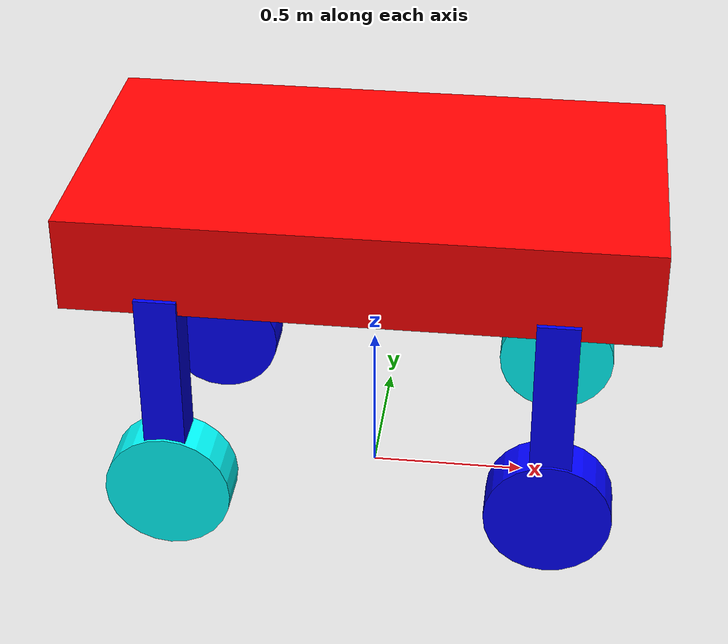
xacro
<?xml version="1.0"?>
<robot xmlns:xacro="http://www.ros.org/wiki/xacro"  name="robot">

<!--xacro:include filename="inertial_file.xacro" /-->

<xacro:property name ="chassis_length" value="1.8"/>
<xacro:property name ="chassis_width" value="1"/>
<xacro:property name ="chassis_height" value="0.3"/>
<xacro:property name ="chassis_mass" value="200"/>

<xacro:property name="wheel_radius" value="0.3" />
<xacro:property name="wheel_thickness" value="0.1" />
<xacro:property name="wheel_mass" value="3" />

<xacro:property name="wheel_offset_x" value="1.0"/>
<xacro:property name="wheel_offset_y" value="0.5"/>
<xacro:property name="wheel_offset_z" value="0.01"/>

<xacro:property name="leg_length" value="0.13" />
<xacro:property name="leg_width" value="0.13"/>
<xacro:property name="leg_height" value="0.8"/>
<xacro:property name="leg_mass" value="10"/>

<xacro:property name="leg_offset_x" value="1.0"/>
<xacro:property name="leg_offset_y" value="0.5"/>
<xacro:property name="leg_offset_z" value="0.1"/>

<material name="white">
    <color rgba="1 1 1 1"/>
</material>

<material name="yellow">
    <color rgba="0 1 1 1"/>
</material>

<material name="blue">
    <color rgba="0 0 1 1"/>
</material>

<material name="red">
    <color rgba="1 0 0 1"/>
</material>

<!--World-->

<link name="base_footprint"/>

<!-- Base Link-->

<joint name="base_joint" type="fixed">
    <origin xyz="0 0 1.0" rpy="0 0 0"/>
    <parent link="base_footprint"/>
    <child link="base_link"/>
</joint>

<!-- Base properties -->
<link name="base_link">
    <visual>
        <origin xyz="0 0 0" rpy="0 0 0"/>
        <geometry>
            <box size="${chassis_length} ${chassis_width} ${chassis_height}" />
        </geometry>
        <material name="red"/>
    </visual>
    <collision>
        <origin xyz="0 0 0" rpy="0 0 0"/>
        <geometry>
            <box size="${chassis_length} ${chassis_width} ${chassis_height}" />
        </geometry>
    </collision>
    <inertial>
        <origin xyz="0 0 0" rpy="0 0 0"/>
        <mass value="50" />
        <inertia ixx="4.54" ixy="0.0" ixz="0.0" iyy="13.88" iyz="0.0" izz="17.66" />
    </inertial>
</link>

<!-- Leg front right-->
<joint name="leg_front_right_joint" type="revolute">
    <origin xyz="0.6 -0.45 -0.5" rpy="0 0 0"/>
    <limit lower="-0.78" upper="0.78" effort="10" velocity="0.5"/>
    <parent link="base_link"/>
    <child link="leg_front_right_link"/>
    <axis xyz="0 0 1"/>
</joint>

<link name="leg_front_right_link">
    <visual>
        <origin xyz="0 0 0" rpy="0 0 0"/>
        <geometry>
            <box size="${leg_length} ${leg_width} ${leg_height}"/>
        </geometry>
        <material name="blue" />
    </visual>
    <collision>
        <origin xyz="0 0 0" rpy="0 0 0"/>
        <geometry>
            <box size="${leg_length} ${leg_width} ${leg_height}"/>
        </geometry>
    </collision>
    <inertial>
        <origin xyz="0 0 0.4" rpy="0 0 0"/>
        <mass value="10" />
        <inertia ixx="0.547" ixy="0.0" ixz="0.0" iyy="0.547" iyz="0.0" izz="0.028" />
    </inertial>
</link>

<!-- Wheel front right-->
<joint name="wheel_front_right_joint" type="continuous">
    <origin xyz="0.0 0.0 -0.3" rpy="-${pi/2} 0.0 0.0"/>
    <parent link="leg_front_right_link"/>
    <child link="wheel_front_right_link"/>
    <axis xyz="0 0 1"/> <!-- Axe de rotation (dans cet exemple, axe Y) -->
</joint>

<link name="wheel_front_right_link">
    <visual>
        <origin xyz="0 0 0" rpy="0 0 0"/>
        <geometry>
            <cylinder length="0.15" radius="0.2" />
        </geometry>
        <material name="blue" />
    </visual>
    <collision>
        <origin xyz="0 0 0" rpy="0 0 0"/>
        <geometry>
            <cylinder length="0.15" radius="0.2" />
        </geometry>
    </collision>
    <inertial>
        <origin xyz="0 0 0" rpy="0 0 0"/>
        <mass value="3" />
        <inertia ixx="0.035" ixy="0.0" ixz="0.0" iyy="0.035" iyz="0.0" izz="0.06" />
    </inertial>
</link>

<!-- Leg front left-->
<joint name="leg_front_left_joint" type="revolute">
    <limit lower="-0.78" upper="0.78" effort="10" velocity="0.5"/>
    <origin xyz="0.6 0.45 -0.5" rpy="0 0 0"/>
    <parent link="base_link"/>
    <child link="leg_front_left_link"/>
    <axis xyz="0 0 1"/>
</joint>

<link name="leg_front_left_link">
    <visual>
        <origin xyz="0 0 0" rpy="0 0 0"/>
        <geometry>
            <box size="${leg_length} ${leg_width} ${leg_height}"/>
        </geometry>
        <material name="blue" />
    </visual>
    <collision>
        <origin xyz="0 0 0" rpy="0 0 0"/>
        <geometry>
            <box size="${leg_length} ${leg_width} ${leg_height}"/>
        </geometry>
    </collision>
    <inertial>
        <origin xyz="0 0 0.4" rpy="0 0 0"/>
        <mass value="10" />
         <inertia ixx="0.547" ixy="0.0" ixz="0.0" iyy="0.547" iyz="0.0" izz="0.028" />
    </inertial>
</link>

<!--Leg front left-->
<joint name="wheel_front_left_joint" type="continuous">
    <origin xyz="0.0 0.0 -0.3" rpy="-${pi/2} 0.0 0.0"/>
    <parent link="leg_front_left_link"/>
    <child link="wheel_front_left_link"/>
    <axis xyz="0 0 1"/> <!-- Axe de rotation (dans cet exemple, axe Z) -->
</joint>

<link name="wheel_front_left_link">
    <visual>
        <origin xyz="0 0 0" rpy="0 0 0"/>
        <geometry>
            <cylinder length="0.15" radius="0.2" />
        </geometry>
        <material name="yellow" />
    </visual>
    <collision>
        <origin xyz="0 0 0" rpy="0 0 0"/>
        <geometry>
            <cylinder length="0.15" radius="0.2" />
        </geometry>
    </collision>
    <inertial>
       <origin xyz="0 0 0" rpy="0 0 0"/>
        <mass value="3" />
        <inertia ixx="0.035" ixy="0.0" ixz="0.0" iyy="0.035" iyz="0.0" izz="0.06" />
    </inertial>
</link>

<!--Leg back left -->

<joint name="leg_back_left_joint" type="fixed">
    <origin xyz="-0.6 -0.45 -0.5" rpy="0 0 0"/>
    <parent link="base_link"/>
    <child link="leg_back_left_link"/>
    <axis xyz="0 0 1"/>
</joint>

<link name="leg_back_left_link">
    <visual>
        <origin xyz="0 0 0" rpy="0 0 0"/>
        <geometry>
            <box size="${leg_length} ${leg_width} ${leg_height}"/>
        </geometry>
        <material name="blue" />
    </visual>
    <collision>
        <origin xyz="0 0 0" rpy="0 0 0"/>
        <geometry>
            <box size="${leg_length} ${leg_width} ${leg_height}"/>
        </geometry>
    </collision>
    <inertial>
        <origin xyz="0 0 0.4" rpy="0 0 0"/>
        <mass value="10" />
         <inertia ixx="0.547" ixy="0.0" ixz="0.0" iyy="0.547" iyz="0.0" izz="0.028" />
    </inertial>
</link>
<!--wheel back left-->
<!--Leg front left-->
<joint name="wheel_back_left_joint" type="continuous">
    <origin xyz="0.0 0.0 -0.3" rpy="-${pi/2} 0.0 0.0"/>
    <parent link="leg_back_left_link"/>
    <child link="wheel_back_left_link"/>
    <axis xyz="0 0 1"/> <!-- Axe de rotation (dans cet exemple, axe Z) -->
</joint>

<link name="wheel_back_left_link">
    <visual>
        <origin xyz="0 0 0" rpy="0 0 0"/>
        <geometry>
            <cylinder length="0.15" radius="0.2" />
        </geometry>
        <material name="yellow" />
    </visual>
    <collision>
        <origin xyz="0 0 0" rpy="0 0 0"/>
        <geometry>
            <cylinder length="0.15" radius="0.2" />
        </geometry>
    </collision>
    <inertial>
        <origin xyz="0 0 0" rpy="0 0 0"/>
        <mass value="3" />
        <inertia ixx="0.035" ixy="0.0" ixz="0.0" iyy="0.035" iyz="0.0" izz="0.06" />
    </inertial>
</link>

<!--Leg back right -->

<joint name="leg_back_right_joint" type="fixed">
    <origin xyz="-0.6 0.45 -0.5" rpy="0 0 0"/>
    <parent link="base_link"/>
    <child link="leg_back_right_link"/>
    <axis xyz="0 0 1"/>
</joint>

<link name="leg_back_right_link">
    <visual>
        <origin xyz="0 0 0" rpy="0 0 0"/>
        <geometry>
            <box size="${leg_length} ${leg_width} ${leg_height}"/>
        </geometry>
        <material name="blue" />
    </visual>
    <collision>
        <origin xyz="0 0 0" rpy="0 0 0"/>
        <geometry>
           <box size="${leg_length} ${leg_width} ${leg_height}"/>
        </geometry>
    </collision>
    <inertial>
        <origin xyz="0 0 0.4" rpy="0 0 0"/>
        <mass value="10" />
        <inertia ixx="0.547" ixy="0.0" ixz="0.0" iyy="0.547" iyz="0.0" izz="0.028" />
    </inertial>
</link>

<!--wheel back right-->
<joint name="wheel_back_right_joint" type="continuous">
   <origin xyz="0.0 0.0 -0.3" rpy="-${pi/2} 0.0 0.0"/>
    <parent link="leg_back_right_link"/>
    <child link="wheel_back_right_link"/>
    <axis xyz="0 0 1"/> <!-- Axe de rotation (dans cet exemple, axe Z) -->
</joint>

<link name="wheel_back_right_link">
    <visual>
        <origin xyz="0 0 0" rpy="0 0 0"/>
        <geometry>
            <cylinder length="0.15" radius="0.2" />
        </geometry>
        <material name="blue" />
    </visual>
    <collision>
        <origin xyz="0 0 0" rpy="0 0 0"/>
        <geometry>
            <cylinder length="0.15" radius="0.2" />
        </geometry>
    </collision>
    <inertial>
        <origin xyz="0 0 0" rpy="0 0 0"/>
        <mass value="3" />
        <inertia ixx="0.035" ixy="0.0" ixz="0.0" iyy="0.035" iyz="0.0" izz="0.06" />
    </inertial>
</link>
</robot>
